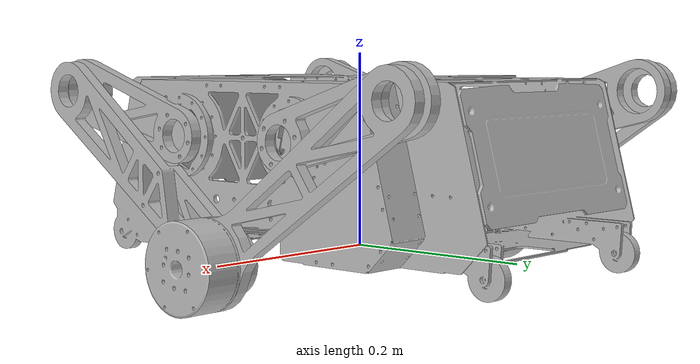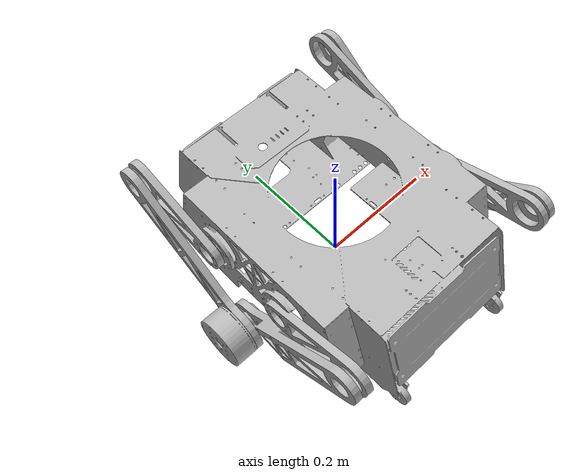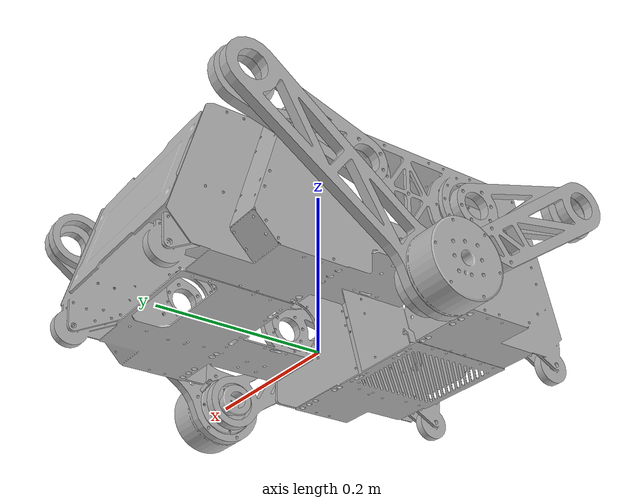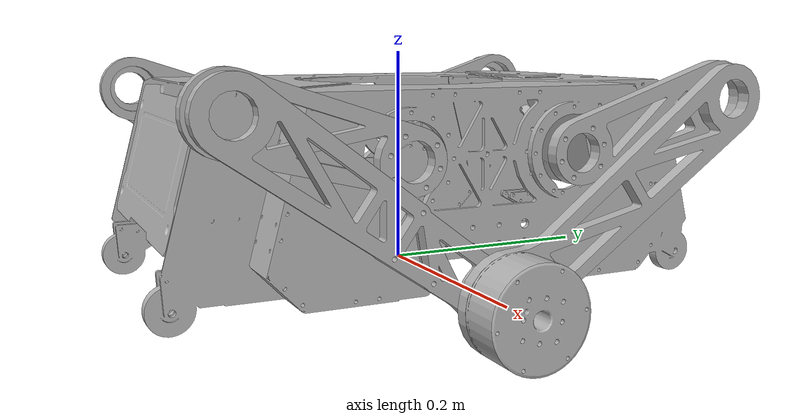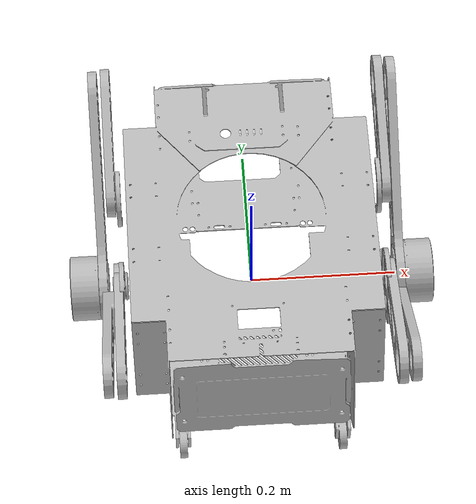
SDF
<sdf version='1.7'>
  <model name='balance_infantry'>
    <link name='base_link'>
      <inertial>
        <pose>5.5e-05 0.001335 0.075031 0 -0 0</pose>
        <mass>50</mass>
        <inertia>
          <ixx>0.011538</ixx>
          <ixy>-3.77362e-06</ixy>
          <ixz>5.16086e-16</ixz>
          <iyy>0.00396514</iyy>
          <iyz>-9.7271e-19</iyz>
          <izz>0.0110912</izz>
        </inertia>
      </inertial>
      <collision name='base_link_collision'>
        <pose>0 0 0 0 -0 0</pose>
        <geometry>
          <mesh>
            <scale>1 1 1</scale>
            <uri>meshes/base_link.obj</uri>
          </mesh>
        </geometry>
      </collision>
      <visual name='base_link_visual'>
        <pose>0 0 0 0 -0 0</pose>
        <geometry>
          <mesh>
            <scale>1 1 1</scale>
            <uri>meshes/base_link.STL</uri>
          </mesh>
        </geometry>
      </visual>
    </link>
    <joint name='joint1' type='revolute'>
      <pose relative_to='base_link'>0.16875 -0.075 0.119386 0 -0 0</pose>
      <parent>base_link</parent>
      <child>left_front_thigh_link</child>
      <axis>
        <xyz>1 0 0</xyz>
        <limit>
          <lower>0</lower>
          <upper>1.108</upper>
          <effort>100</effort>
          <velocity>0.5</velocity>
        </limit>
        <dynamics>
          <spring_reference>0</spring_reference>
          <spring_stiffness>0</spring_stiffness>
        </dynamics>
      </axis>
    </joint>
    <link name='left_front_thigh_link'>
      <pose relative_to='joint1'>0 0 0 0 -0 0</pose>
      <inertial>
        <pose>0.01325 -0.073697 0.020976 0 -0 0</pose>
        <mass>1</mass>
        <inertia>
          <ixx>0.000584485</ixx>
          <ixy>-7.59535e-20</ixy>
          <ixz>2.64423e-20</ixz>
          <iyy>0.000100176</iyy>
          <iyz>0.000116727</iyz>
          <izz>0.000488182</izz>
        </inertia>
      </inertial>
      <collision name='left_front_thigh_link_collision'>
        <pose>0 0 0 0 -0 0</pose>
        <geometry>
          <mesh>
            <scale>1 1 1</scale>
            <uri>meshes/left_front_thigh_link.obj</uri>
          </mesh>
        </geometry>
      </collision>
      <visual name='left_front_thigh_link_visual'>
        <pose>0 0 0 0 -0 0</pose>
        <geometry>
          <mesh>
            <scale>1 1 1</scale>
            <uri>meshes/left_front_thigh_link.STL</uri>
          </mesh>
        </geometry>
      </visual>
    </link>
    <joint name='joint5' type='revolute'>
      <pose relative_to='left_front_thigh_link'>0.01145 -0.144189 0.041346 0 -0 0</pose>
      <parent>left_front_thigh_link</parent>
      <child>left_front_calf_link</child>
      <axis>
        <xyz>-1 0 0</xyz>
        <limit>
          <effort>0</effort>
          <velocity>0</velocity>
          <lower>-1e+16</lower>
          <upper>1e+16</upper>
        </limit>
        <dynamics>
          <spring_reference>0</spring_reference>
          <spring_stiffness>0</spring_stiffness>
        </dynamics>
      </axis>
    </joint>
    <link name='left_front_calf_link'>
      <pose relative_to='joint5'>0 0 0 0 -0 0</pose>
      <inertial>
        <pose>0.013632 0.108796 -0.079123 0 -0 0</pose>
        <mass>1</mass>
        <inertia>
          <ixx>0.00106116</ixx>
          <ixy>-1.55468e-19</ixy>
          <ixz>1.28535e-19</ixz>
          <iyy>0.000423834</iyy>
          <iyz>0.000415316</iyz>
          <izz>0.00064444</izz>
        </inertia>
      </inertial>
      <collision name='left_front_calf_link_collision'>
        <pose>0 0 0 0 -0 0</pose>
        <geometry>
          <mesh>
            <scale>1 1 1</scale>
            <uri>meshes/left_front_calf_link.obj</uri>
          </mesh>
        </geometry>
      </collision>
      <visual name='left_front_calf_link_visual'>
        <pose>0 0 0 0 -0 0</pose>
        <geometry>
          <mesh>
            <scale>1 1 1</scale>
            <uri>meshes/left_front_calf_link.STL</uri>
          </mesh>
        </geometry>
      </visual>
    </link>
    <joint name='joint11' type='revolute'>
      <pose relative_to='left_front_calf_link'>-0.00025 0.21919 -0.15766 0 -0 0</pose>
      <parent>left_front_calf_link</parent>
      <child>left_hole_link</child>
      <axis>
        <xyz>-1 0 0</xyz>
        <limit>
          <effort>0</effort>
          <velocity>0</velocity>
          <lower>-1e+16</lower>
          <upper>1e+16</upper>
        </limit>
        <dynamics>
          <spring_reference>0</spring_reference>
          <spring_stiffness>0</spring_stiffness>
        </dynamics>
      </axis>
    </joint>
    <link name='left_hole_link'>
      <pose relative_to='joint11'>0 0 0 0 -0 0</pose>
      <inertial>
        <pose>0.002058 -0 -0 0 -0 0</pose>
        <mass>1</mass>
        <inertia>
          <ixx>3.34316e-06</ixx>
          <ixy>-1.48304e-23</ixy>
          <ixz>-1.78428e-22</ixz>
          <iyy>2.74009e-06</iyy>
          <iyz>3.07849e-09</iyz>
          <izz>2.74216e-06</izz>
        </inertia>
      </inertial>
      <collision name='left_hole_link_collision'>
        <pose>0 0 0 0 -0 0</pose>
        <geometry>
          <mesh>
            <scale>1 1 1</scale>
            <uri>meshes/left_hole_link.obj</uri>
          </mesh>
        </geometry>
      </collision>
      <visual name='left_hole_link_visual'>
        <pose>0 0 0 0 -0 0</pose>
        <geometry>
          <mesh>
            <scale>1 1 1</scale>
            <uri>meshes/left_hole_link.STL</uri>
          </mesh>
        </geometry>
      </visual>
    </link>
    <joint name='joint2' type='revolute'>
      <pose relative_to='base_link'>0.16875 0.075 0.119386 0 -0 0</pose>
      <parent>base_link</parent>
      <child>left_back_thigh_link</child>
      <axis>
        <xyz>1 0 0</xyz>
        <limit>
          <lower>-1.108</lower>
          <upper>0</upper>
          <effort>100</effort>
          <velocity>0.5</velocity>
        </limit>
        <dynamics>
          <spring_reference>0</spring_reference>
          <spring_stiffness>0</spring_stiffness>
        </dynamics>
      </axis>
    </joint>
    <link name='left_back_thigh_link'>
      <pose relative_to='joint2'>0 0 0 0 -0 0</pose>
      <inertial>
        <pose>0.01925 0.073614 0.021265 0 -0 0</pose>
        <mass>1</mass>
        <inertia>
          <ixx>0.000584485</ixx>
          <ixy>-6.86718e-21</ixy>
          <ixz>-1.55125e-21</ixz>
          <iyy>0.00010422</iyy>
          <iyz>-0.000123199</iyz>
          <izz>0.000484138</izz>
        </inertia>
      </inertial>
      <collision name='left_back_thigh_link_collision'>
        <pose>0 0 0 0 -0 0</pose>
        <geometry>
          <mesh>
            <scale>1 1 1</scale>
            <uri>meshes/left_back_thigh_link.obj</uri>
          </mesh>
        </geometry>
      </collision>
      <visual name='left_back_thigh_link_visual'>
        <pose>0 0 0 0 -0 0</pose>
        <geometry>
          <mesh>
            <scale>1 1 1</scale>
            <uri>meshes/left_back_thigh_link.STL</uri>
          </mesh>
        </geometry>
      </visual>
    </link>
    <joint name='joint3' type='revolute'>
      <pose relative_to='left_back_thigh_link'>0.01745 0.144189 0.041346 0 -0 0</pose>
      <parent>left_back_thigh_link</parent>
      <child>left_back_calf_link</child>
      <axis>
        <xyz>-1 0 0</xyz>
        <limit>
          <effort>0</effort>
          <velocity>0</velocity>
          <lower>-1e+16</lower>
          <upper>1e+16</upper>
        </limit>
        <dynamics>
          <spring_reference>0</spring_reference>
          <spring_stiffness>0</spring_stiffness>
        </dynamics>
      </axis>
    </joint>
    <link name='left_back_calf_link'>
      <pose relative_to='joint3'>0 0 0 0 -0 0</pose>
      <inertial>
        <pose>0.0193 -0.106283 -0.076521 0 -0 0</pose>
        <mass>1</mass>
        <inertia>
          <ixx>0.00256624</ixx>
          <ixy>1.07071e-18</ixy>
          <ixz>5.86331e-19</ixz>
          <iyy>0.000908121</iyy>
          <iyz>-0.00110315</iyz>
          <izz>0.00166436</izz>
        </inertia>
      </inertial>
      <collision name='left_back_calf_link_collision'>
        <pose>0 0 0 0 -0 0</pose>
        <geometry>
          <mesh>
            <scale>1 1 1</scale>
            <uri>meshes/left_back_calf_link.obj</uri>
          </mesh>
        </geometry>
      </collision>
      <visual name='left_back_calf_link_visual'>
        <pose>0 0 0 0 -0 0</pose>
        <geometry>
          <mesh>
            <scale>1 1 1</scale>
            <uri>meshes/left_back_calf_link.STL</uri>
          </mesh>
        </geometry>
      </visual>
    </link>
    <joint name='joint4' type='revolute'>
      <pose relative_to='left_back_calf_link'>0.0108 -0.21919 -0.15766 0 -0 0</pose>
      <parent>left_back_calf_link</parent>
      <child>left_wheel_link</child>
      <axis>
        <xyz>1 0 0</xyz>
        <limit>
          <effort>0</effort>
          <velocity>0</velocity>
          <lower>-1e+16</lower>
          <upper>1e+16</upper>
        </limit>
        <dynamics>
          <spring_reference>0</spring_reference>
          <spring_stiffness>0</spring_stiffness>
        </dynamics>
      </axis>
    </joint>
    <link name='left_wheel_link'>
      <pose relative_to='joint4'>0 0 0 0 -0 0</pose>
      <inertial>
        <pose>0.038207 0.000186 -1.8e-05 0 -0 0</pose>
        <mass>1</mass>
        <inertia>
          <ixx>0.00492418</ixx>
          <ixy>-3.2637e-08</ixy>
          <ixz>-1.5754e-09</ixz>
          <iyy>0.00253313</iyy>
          <iyz>-9.15263e-07</iyz>
          <izz>0.00252301</izz>
        </inertia>
      </inertial>
      <collision name='left_wheel_link_collision'>
        <pose>0 0 0 0 -0 0</pose>
        <geometry>
          <mesh>
            <scale>1 1 1</scale>
            <uri>meshes/left_wheel_link.obj</uri>
          </mesh>
        </geometry>
      </collision>
      <visual name='left_wheel_link_visual'>
        <pose>0 0 0 0 -0 0</pose>
        <geometry>
          <mesh>
            <scale>1 1 1</scale>
            <uri>meshes/left_wheel_link.STL</uri>
          </mesh>
        </geometry>
      </visual>
    </link>
    <joint name='joint6' type='revolute'>
      <pose relative_to='base_link'>-0.16875 0.075 0.119386 0 -0 0</pose>
      <parent>base_link</parent>
      <child>right_back_thigh_link</child>
      <axis>
        <xyz>1 0 0</xyz>
        <limit>
          <lower>-1.108</lower>
          <upper>0</upper>
          <effort>100</effort>
          <velocity>0.5</velocity>
        </limit>
        <dynamics>
          <spring_reference>0</spring_reference>
          <spring_stiffness>0</spring_stiffness>
        </dynamics>
      </axis>
    </joint>
    <link name='right_back_thigh_link'>
      <pose relative_to='joint6'>0 0 0 0 -0 0</pose>
      <inertial>
        <pose>-0.01925 0.073697 0.020976 0 -0 0</pose>
        <mass>1</mass>
        <inertia>
          <ixx>0.000584485</ixx>
          <ixy>3.08437e-21</ixy>
          <ixz>1.41027e-21</ixz>
          <iyy>0.000100176</iyy>
          <iyz>-0.000116727</iyz>
          <izz>0.000488182</izz>
        </inertia>
      </inertial>
      <collision name='right_back_thigh_link_collision'>
        <pose>0 0 0 0 -0 0</pose>
        <geometry>
          <mesh>
            <scale>1 1 1</scale>
            <uri>meshes/right_back_thigh_link.obj</uri>
          </mesh>
        </geometry>
      </collision>
      <visual name='right_back_thigh_link_visual'>
        <pose>0 0 0 0 -0 0</pose>
        <geometry>
          <mesh>
            <scale>1 1 1</scale>
            <uri>meshes/right_back_thigh_link.STL</uri>
          </mesh>
        </geometry>
      </visual>
    </link>
    <joint name='joint10' type='revolute'>
      <pose relative_to='right_back_thigh_link'>-0.01745 0.144189 0.041346 0 -0 0</pose>
      <parent>right_back_thigh_link</parent>
      <child>right_back_calf_link</child>
      <axis>
        <xyz>1 0 0</xyz>
        <limit>
          <effort>0</effort>
          <velocity>0</velocity>
          <lower>-1e+16</lower>
          <upper>1e+16</upper>
        </limit>
        <dynamics>
          <spring_reference>0</spring_reference>
          <spring_stiffness>0</spring_stiffness>
        </dynamics>
      </axis>
    </joint>
    <link name='right_back_calf_link'>
      <pose relative_to='joint10'>0 0 0 0 -0 0</pose>
      <inertial>
        <pose>-0.0193 -0.106353 -0.076424 0 -0 0</pose>
        <mass>1</mass>
        <inertia>
          <ixx>0.00256624</ixx>
          <ixy>-8.81998e-19</ixy>
          <ixz>-4.47693e-19</ixz>
          <iyy>0.000922519</iyy>
          <iyz>-0.00110798</iyz>
          <izz>0.00164996</izz>
        </inertia>
      </inertial>
      <collision name='right_back_calf_link_collision'>
        <pose>0 0 0 0 -0 0</pose>
        <geometry>
          <mesh>
            <scale>1 1 1</scale>
            <uri>meshes/right_back_calf_link.obj</uri>
          </mesh>
        </geometry>
      </collision>
      <visual name='right_back_calf_link_visual'>
        <pose>0 0 0 0 -0 0</pose>
        <geometry>
          <mesh>
            <scale>1 1 1</scale>
            <uri>meshes/right_back_calf_link.STL</uri>
          </mesh>
        </geometry>
      </visual>
    </link>
    <joint name='joint9' type='revolute'>
      <pose relative_to='right_back_calf_link'>-0.0108 -0.21919 -0.15766 0 -0 0</pose>
      <parent>right_back_calf_link</parent>
      <child>right_wheel_link</child>
      <axis>
        <xyz>1 0 0</xyz>
        <limit>
          <effort>0</effort>
          <velocity>0</velocity>
          <lower>-1e+16</lower>
          <upper>1e+16</upper>
        </limit>
        <dynamics>
          <spring_reference>0</spring_reference>
          <spring_stiffness>0</spring_stiffness>
        </dynamics>
      </axis>
    </joint>
    <link name='right_wheel_link'>
      <pose relative_to='joint9'>0 0 0 0 -0 0</pose>
      <inertial>
        <pose>-0.038207 4.2e-05 0.000182 0 -0 0</pose>
        <mass>1</mass>
        <inertia>
          <ixx>0.00492418</ixx>
          <ixy>1.18747e-08</ixy>
          <ixz>3.04408e-08</ixz>
          <iyy>0.00252348</iyy>
          <iyz>2.32217e-06</iyz>
          <izz>0.00253266</izz>
        </inertia>
      </inertial>
      <collision name='right_wheel_link_collision'>
        <pose>0 0 0 0 -0 0</pose>
        <geometry>
          <mesh>
            <scale>1 1 1</scale>
            <uri>meshes/right_wheel_link.obj</uri>
          </mesh>
        </geometry>
      </collision>
      <visual name='right_wheel_link_visual'>
        <pose>0 0 0 0 -0 0</pose>
        <geometry>
          <mesh>
            <scale>1 1 1</scale>
            <uri>meshes/right_wheel_link.STL</uri>
          </mesh>
        </geometry>
      </visual>
    </link>
    <joint name='joint7' type='revolute'>
      <pose relative_to='base_link'>-0.16875 -0.075 0.119386 0 -0 0</pose>
      <parent>base_link</parent>
      <child>right_front_thigh_link</child>
      <axis>
        <xyz>1 0 0</xyz>
        <limit>
          <lower>0</lower>
          <upper>1.108</upper>
          <effort>100</effort>
          <velocity>0.5</velocity>
        </limit>
        <dynamics>
          <spring_reference>0</spring_reference>
          <spring_stiffness>0</spring_stiffness>
        </dynamics>
      </axis>
    </joint>
    <link name='right_front_thigh_link'>
      <pose relative_to='joint7'>0 0 0 0 -0 0</pose>
      <inertial>
        <pose>-0.01325 -0.073614 0.021265 0 -0 0</pose>
        <mass>1</mass>
        <inertia>
          <ixx>0.000584485</ixx>
          <ixy>1.23882e-19</ixy>
          <ixz>-4.69681e-20</ixz>
          <iyy>0.00010422</iyy>
          <iyz>0.000123199</iyz>
          <izz>0.000484138</izz>
        </inertia>
      </inertial>
      <collision name='right_front_thigh_link_collision'>
        <pose>0 0 0 0 -0 0</pose>
        <geometry>
          <mesh>
            <scale>1 1 1</scale>
            <uri>meshes/right_front_thigh_link.obj</uri>
          </mesh>
        </geometry>
      </collision>
      <visual name='right_front_thigh_link_visual'>
        <pose>0 0 0 0 -0 0</pose>
        <geometry>
          <mesh>
            <scale>1 1 1</scale>
            <uri>meshes/right_front_thigh_link.STL</uri>
          </mesh>
        </geometry>
      </visual>
    </link>
    <joint name='joint8' type='revolute'>
      <pose relative_to='right_front_thigh_link'>-0.01145 -0.144189 0.041346 0 -0 0</pose>
      <parent>right_front_thigh_link</parent>
      <child>right_front_calf_link</child>
      <axis>
        <xyz>1 0 0</xyz>
        <limit>
          <effort>0</effort>
          <velocity>0</velocity>
          <lower>-1e+16</lower>
          <upper>1e+16</upper>
        </limit>
        <dynamics>
          <spring_reference>0</spring_reference>
          <spring_stiffness>0</spring_stiffness>
        </dynamics>
      </axis>
    </joint>
    <link name='right_front_calf_link'>
      <pose relative_to='joint8'>0 0 0 0 -0 0</pose>
      <inertial>
        <pose>-0.013632 0.109619 -0.077978 0 -0 0</pose>
        <mass>1</mass>
        <inertia>
          <ixx>0.00106116</ixx>
          <ixy>1.70479e-19</ixy>
          <ixz>-1.14495e-19</ixz>
          <iyy>0.000371637</iyy>
          <iyz>0.000397803</iyz>
          <izz>0.000696637</izz>
        </inertia>
      </inertial>
      <collision name='right_front_calf_link_collision'>
        <pose>0 0 0 0 -0 0</pose>
        <geometry>
          <mesh>
            <scale>1 1 1</scale>
            <uri>meshes/right_front_calf_link.obj</uri>
          </mesh>
        </geometry>
      </collision>
      <visual name='right_front_calf_link_visual'>
        <pose>0 0 0 0 -0 0</pose>
        <geometry>
          <mesh>
            <scale>1 1 1</scale>
            <uri>meshes/right_front_calf_link.STL</uri>
          </mesh>
        </geometry>
      </visual>
    </link>
    <joint name='joint12' type='revolute'>
      <pose relative_to='right_front_calf_link'>0.00025 0.21919 -0.15766 0 -0 0</pose>
      <parent>right_front_calf_link</parent>
      <child>right_hole_link</child>
      <axis>
        <xyz>1 0 0</xyz>
        <limit>
          <effort>0</effort>
          <velocity>0</velocity>
          <lower>-1e+16</lower>
          <upper>1e+16</upper>
        </limit>
        <dynamics>
          <spring_reference>0</spring_reference>
          <spring_stiffness>0</spring_stiffness>
        </dynamics>
      </axis>
    </joint>
    <link name='right_hole_link'>
      <pose relative_to='joint12'>0 0 0 0 -0 0</pose>
      <inertial>
        <pose>-0.002058 0 -0 0 -0 0</pose>
        <mass>1</mass>
        <inertia>
          <ixx>3.34316e-06</ixx>
          <ixy>-2.2217e-22</ixy>
          <ixz>-6.61732e-23</ixz>
          <iyy>2.74009e-06</iyy>
          <iyz>3.07849e-09</iyz>
          <izz>2.74216e-06</izz>
        </inertia>
      </inertial>
      <collision name='right_hole_link_collision'>
        <pose>0 0 0 0 -0 0</pose>
        <geometry>
          <mesh>
            <scale>1 1 1</scale>
            <uri>meshes/right_hole_link.obj</uri>
          </mesh>
        </geometry>
      </collision>
      <visual name='right_hole_link_visual'>
        <pose>0 0 0 0 -0 0</pose>
        <geometry>
          <mesh>
            <scale>1 1 1</scale>
            <uri>meshes/right_hole_link.STL</uri>
          </mesh>
        </geometry>
      </visual>
    </link>
  </model>
</sdf>
